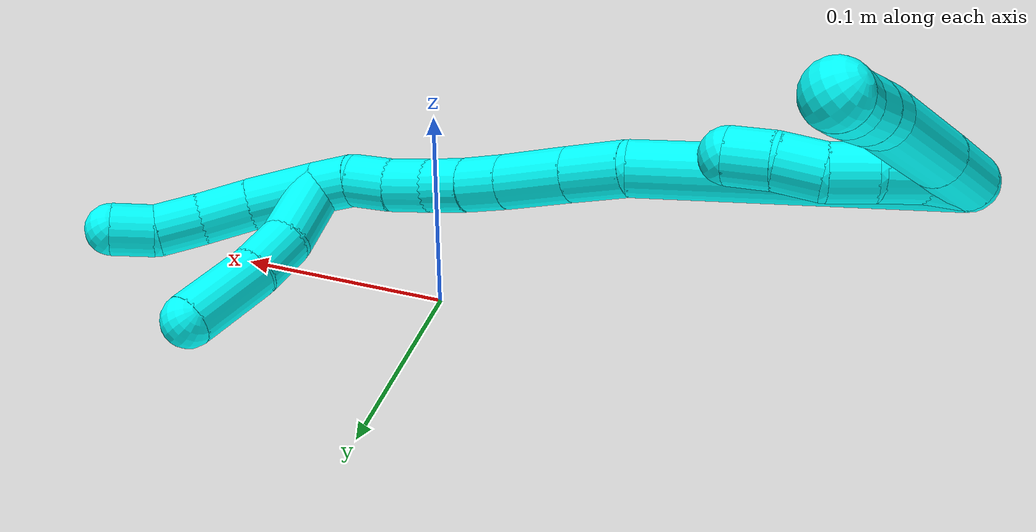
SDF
<sdf version="1.7">
 <world name="default">
  <model name="3">
   <static>0</static>
   <link name="3">
    <collision name="collision-cylinder-e_1_2_8">
     <pose>0.009421 0.012812 0.003813 -1.28152 0.613941 -0.464255</pose>
     <geometry><cylinder><radius>0.0125</radius><length>0.032707</length></cylinder></geometry>
     <surface>
      <friction><ode><mu>1.16</mu><mu2>1.16</mu2><slip1>0</slip1><slip2>0</slip2></ode></friction>
      <contact><ode><kp>1e+06</kp><kd>1</kd><max_vel>0</max_vel><min_depth>0.001</min_depth></ode></contact>
     </surface>
    </collision>
    <visual name="visual-cylinder-e_1_2_8">
     <pose>0.009421 0.012812 0.003813 -1.28152 0.613941 -0.464255</pose>
     <geometry><cylinder><radius>0.0125</radius><length>0.032707</length></cylinder></geometry>
     <material><ambient>0.003922 1 0.996078 1</ambient></material>
    </visual>
    <collision name="collision-cylinder-e_2_8_9">
     <pose>0.033239 0.046336 0.01365 -1.28779 0.588513 -0.44734</pose>
     <geometry><cylinder><radius>0.0125</radius><length>0.051866</length></cylinder></geometry>
     <surface>
      <friction><ode><mu>1.16</mu><mu2>1.16</mu2><slip1>0</slip1><slip2>0</slip2></ode></friction>
      <contact><ode><kp>1e+06</kp><kd>1</kd><max_vel>0</max_vel><min_depth>0.001</min_depth></ode></contact>
     </surface>
    </collision>
    <visual name="visual-cylinder-e_2_8_9">
     <pose>0.033239 0.046336 0.01365 -1.28779 0.588513 -0.44734</pose>
     <geometry><cylinder><radius>0.0125</radius><length>0.051866</length></cylinder></geometry>
     <material><ambient>0.003922 1 0.996078 1</ambient></material>
    </visual>
    <collision name="collision-cylinder-e_3_9_10">
     <pose>0.050858 0.076965 0.023107 -1.23744 0.297965 -0.212921</pose>
     <geometry><cylinder><radius>0.0125</radius><length>0.021957</length></cylinder></geometry>
     <surface>
      <friction><ode><mu>1.16</mu><mu2>1.16</mu2><slip1>0</slip1><slip2>0</slip2></ode></friction>
      <contact><ode><kp>1e+06</kp><kd>1</kd><max_vel>0</max_vel><min_depth>0.001</min_depth></ode></contact>
     </surface>
    </collision>
    <visual name="visual-cylinder-e_3_9_10">
     <pose>0.050858 0.076965 0.023107 -1.23744 0.297965 -0.212921</pose>
     <geometry><cylinder><radius>0.0125</radius><length>0.021957</length></cylinder></geometry>
     <material><ambient>0.003922 1 0.996078 1</ambient></material>
    </visual>
    <collision name="collision-cylinder-e_4_10_11">
     <pose>0.05768 0.097155 0.029922 -1.25285 0.321253 -0.233432</pose>
     <geometry><cylinder><radius>0.0125</radius><length>0.022797</length></cylinder></geometry>
     <surface>
      <friction><ode><mu>1.16</mu><mu2>1.16</mu2><slip1>0</slip1><slip2>0</slip2></ode></friction>
      <contact><ode><kp>1e+06</kp><kd>1</kd><max_vel>0</max_vel><min_depth>0.001</min_depth></ode></contact>
     </surface>
    </collision>
    <visual name="visual-cylinder-e_4_10_11">
     <pose>0.05768 0.097155 0.029922 -1.25285 0.321253 -0.233432</pose>
     <geometry><cylinder><radius>0.0125</radius><length>0.022797</length></cylinder></geometry>
     <material><ambient>0.003922 1 0.996078 1</ambient></material>
    </visual>
    <collision name="collision-cylinder-e_5_11_6">
     <pose>0.063858 0.116573 0.037373 -1.15206 0.252167 -0.164287</pose>
     <geometry><cylinder><radius>0.0125</radius><length>0.020673</length></cylinder></geometry>
     <surface>
      <friction><ode><mu>1.16</mu><mu2>1.16</mu2><slip1>0</slip1><slip2>0</slip2></ode></friction>
      <contact><ode><kp>1e+06</kp><kd>1</kd><max_vel>0</max_vel><min_depth>0.001</min_depth></ode></contact>
     </surface>
    </collision>
    <visual name="visual-cylinder-e_5_11_6">
     <pose>0.063858 0.116573 0.037373 -1.15206 0.252167 -0.164287</pose>
     <geometry><cylinder><radius>0.0125</radius><length>0.020673</length></cylinder></geometry>
     <material><ambient>0.003922 1 0.996078 1</ambient></material>
    </visual>
    <collision name="collision-cylinder-e_1_2_12">
     <pose>0.007044 0.006094 -0.00364 -2.10925 0.781537 -1.25583</pose>
     <geometry><cylinder><radius>0.0125</radius><length>0.02</length></cylinder></geometry>
     <surface>
      <friction><ode><mu>1.16</mu><mu2>1.16</mu2><slip1>0</slip1><slip2>0</slip2></ode></friction>
      <contact><ode><kp>1e+06</kp><kd>1</kd><max_vel>0</max_vel><min_depth>0.001</min_depth></ode></contact>
     </surface>
    </collision>
    <visual name="visual-cylinder-e_1_2_12">
     <pose>0.007044 0.006094 -0.00364 -2.10925 0.781537 -1.25583</pose>
     <geometry><cylinder><radius>0.0125</radius><length>0.02</length></cylinder></geometry>
     <material><ambient>0.003922 1 0.996078 1</ambient></material>
    </visual>
    <collision name="collision-cylinder-e_2_12_13">
     <pose>0.019977 0.018491 -0.012338 -2.247 0.629753 -1.19293</pose>
     <geometry><cylinder><radius>0.0125</radius><length>0.02</length></cylinder></geometry>
     <surface>
      <friction><ode><mu>1.16</mu><mu2>1.16</mu2><slip1>0</slip1><slip2>0</slip2></ode></friction>
      <contact><ode><kp>1e+06</kp><kd>1</kd><max_vel>0</max_vel><min_depth>0.001</min_depth></ode></contact>
     </surface>
    </collision>
    <visual name="visual-cylinder-e_2_12_13">
     <pose>0.019977 0.018491 -0.012338 -2.247 0.629753 -1.19293</pose>
     <geometry><cylinder><radius>0.0125</radius><length>0.02</length></cylinder></geometry>
     <material><ambient>0.003922 1 0.996078 1</ambient></material>
    </visual>
    <collision name="collision-cylinder-e_3_13_14">
     <pose>0.031832 0.029383 -0.02398 -2.53302 0.63926 -1.62331</pose>
     <geometry><cylinder><radius>0.0125</radius><length>0.02</length></cylinder></geometry>
     <surface>
      <friction><ode><mu>1.16</mu><mu2>1.16</mu2><slip1>0</slip1><slip2>0</slip2></ode></friction>
      <contact><ode><kp>1e+06</kp><kd>1</kd><max_vel>0</max_vel><min_depth>0.001</min_depth></ode></contact>
     </surface>
    </collision>
    <visual name="visual-cylinder-e_3_13_14">
     <pose>0.031832 0.029383 -0.02398 -2.53302 0.63926 -1.62331</pose>
     <geometry><cylinder><radius>0.0125</radius><length>0.02</length></cylinder></geometry>
     <material><ambient>0.003922 1 0.996078 1</ambient></material>
    </visual>
    <collision name="collision-cylinder-e_4_14_15">
     <pose>0.045324 0.036313 -0.036719 -2.77791 0.852012 -2.37164</pose>
     <geometry><cylinder><radius>0.0125</radius><length>0.02</length></cylinder></geometry>
     <surface>
      <friction><ode><mu>1.16</mu><mu2>1.16</mu2><slip1>0</slip1><slip2>0</slip2></ode></friction>
      <contact><ode><kp>1e+06</kp><kd>1</kd><max_vel>0</max_vel><min_depth>0.001</min_depth></ode></contact>
     </surface>
    </collision>
    <visual name="visual-cylinder-e_4_14_15">
     <pose>0.045324 0.036313 -0.036719 -2.77791 0.852012 -2.37164</pose>
     <geometry><cylinder><radius>0.0125</radius><length>0.02</length></cylinder></geometry>
     <material><ambient>0.003922 1 0.996078 1</ambient></material>
    </visual>
    <collision name="collision-cylinder-e_5_15_5">
     <pose>0.059314 0.040041 -0.050376 -2.95894 0.702844 -2.65205</pose>
     <geometry><cylinder><radius>0.0125</radius><length>0.02</length></cylinder></geometry>
     <surface>
      <friction><ode><mu>1.16</mu><mu2>1.16</mu2><slip1>0</slip1><slip2>0</slip2></ode></friction>
      <contact><ode><kp>1e+06</kp><kd>1</kd><max_vel>0</max_vel><min_depth>0.001</min_depth></ode></contact>
     </surface>
    </collision>
    <visual name="visual-cylinder-e_5_15_5">
     <pose>0.059314 0.040041 -0.050376 -2.95894 0.702844 -2.65205</pose>
     <geometry><cylinder><radius>0.0125</radius><length>0.02</length></cylinder></geometry>
     <material><ambient>0.003922 1 0.996078 1</ambient></material>
    </visual>
    <collision name="collision-cylinder-e_1_2_16">
     <pose>0.042778 0.02288 -0.049459 -2.70831 0.665524 -2.00749</pose>
     <geometry><cylinder><radius>0.0125</radius><length>0.138559</length></cylinder></geometry>
     <surface>
      <friction><ode><mu>1.16</mu><mu2>1.16</mu2><slip1>0</slip1><slip2>0</slip2></ode></friction>
      <contact><ode><kp>1e+06</kp><kd>1</kd><max_vel>0</max_vel><min_depth>0.001</min_depth></ode></contact>
     </surface>
    </collision>
    <visual name="visual-cylinder-e_1_2_16">
     <pose>0.042778 0.02288 -0.049459 -2.70831 0.665524 -2.00749</pose>
     <geometry><cylinder><radius>0.0125</radius><length>0.138559</length></cylinder></geometry>
     <material><ambient>0.003922 1 0.996078 1</ambient></material>
    </visual>
    <collision name="collision-cylinder-e_2_16_17">
     <pose>0.091915 0.047252 -0.111276 -3.02141 0.472295 -2.65158</pose>
     <geometry><cylinder><radius>0.0125</radius><length>0.027955</length></cylinder></geometry>
     <surface>
      <friction><ode><mu>1.16</mu><mu2>1.16</mu2><slip1>0</slip1><slip2>0</slip2></ode></friction>
      <contact><ode><kp>1e+06</kp><kd>1</kd><max_vel>0</max_vel><min_depth>0.001</min_depth></ode></contact>
     </surface>
    </collision>
    <visual name="visual-cylinder-e_2_16_17">
     <pose>0.091915 0.047252 -0.111276 -3.02141 0.472295 -2.65158</pose>
     <geometry><cylinder><radius>0.0125</radius><length>0.027955</length></cylinder></geometry>
     <material><ambient>0.003922 1 0.996078 1</ambient></material>
    </visual>
    <collision name="collision-cylinder-e_3_17_18">
     <pose>0.105701 0.050759 -0.138268 -3.00473 0.465876 -2.57913</pose>
     <geometry><cylinder><radius>0.0125</radius><length>0.033069</length></cylinder></geometry>
     <surface>
      <friction><ode><mu>1.16</mu><mu2>1.16</mu2><slip1>0</slip1><slip2>0</slip2></ode></friction>
      <contact><ode><kp>1e+06</kp><kd>1</kd><max_vel>0</max_vel><min_depth>0.001</min_depth></ode></contact>
     </surface>
    </collision>
    <visual name="visual-cylinder-e_3_17_18">
     <pose>0.105701 0.050759 -0.138268 -3.00473 0.465876 -2.57913</pose>
     <geometry><cylinder><radius>0.0125</radius><length>0.033069</length></cylinder></geometry>
     <material><ambient>0.003922 1 0.996078 1</ambient></material>
    </visual>
    <collision name="collision-cylinder-e_4_18_19">
     <pose>0.117989 0.054097 -0.161717 -2.99265 0.499246 -2.5722</pose>
     <geometry><cylinder><radius>0.0125</radius><length>0.020305</length></cylinder></geometry>
     <surface>
      <friction><ode><mu>1.16</mu><mu2>1.16</mu2><slip1>0</slip1><slip2>0</slip2></ode></friction>
      <contact><ode><kp>1e+06</kp><kd>1</kd><max_vel>0</max_vel><min_depth>0.001</min_depth></ode></contact>
     </surface>
    </collision>
    <visual name="visual-cylinder-e_4_18_19">
     <pose>0.117989 0.054097 -0.161717 -2.99265 0.499246 -2.5722</pose>
     <geometry><cylinder><radius>0.0125</radius><length>0.020305</length></cylinder></geometry>
     <material><ambient>0.003922 1 0.996078 1</ambient></material>
    </visual>
    <collision name="collision-cylinder-e_5_19_20">
     <pose>0.128054 0.056375 -0.179049 -3.02994 0.545658 -2.74731</pose>
     <geometry><cylinder><radius>0.0125</radius><length>0.020053</length></cylinder></geometry>
     <surface>
      <friction><ode><mu>1.16</mu><mu2>1.16</mu2><slip1>0</slip1><slip2>0</slip2></ode></friction>
      <contact><ode><kp>1e+06</kp><kd>1</kd><max_vel>0</max_vel><min_depth>0.001</min_depth></ode></contact>
     </surface>
    </collision>
    <visual name="visual-cylinder-e_5_19_20">
     <pose>0.128054 0.056375 -0.179049 -3.02994 0.545658 -2.74731</pose>
     <geometry><cylinder><radius>0.0125</radius><length>0.020053</length></cylinder></geometry>
     <material><ambient>0.003922 1 0.996078 1</ambient></material>
    </visual>
    <collision name="collision-cylinder-e_6_20_21">
     <pose>0.139016 0.059666 -0.195407 -2.85204 0.613352 -2.27865</pose>
     <geometry><cylinder><radius>0.0125</radius><length>0.020011</length></cylinder></geometry>
     <surface>
      <friction><ode><mu>1.16</mu><mu2>1.16</mu2><slip1>0</slip1><slip2>0</slip2></ode></friction>
      <contact><ode><kp>1e+06</kp><kd>1</kd><max_vel>0</max_vel><min_depth>0.001</min_depth></ode></contact>
     </surface>
    </collision>
    <visual name="visual-cylinder-e_6_20_21">
     <pose>0.139016 0.059666 -0.195407 -2.85204 0.613352 -2.27865</pose>
     <geometry><cylinder><radius>0.0125</radius><length>0.020011</length></cylinder></geometry>
     <material><ambient>0.003922 1 0.996078 1</ambient></material>
    </visual>
    <collision name="collision-cylinder-e_7_21_22">
     <pose>0.151402 0.064185 -0.210424 -2.84627 0.723522 -2.39256</pose>
     <geometry><cylinder><radius>0.0125</radius><length>0.020017</length></cylinder></geometry>
     <surface>
      <friction><ode><mu>1.16</mu><mu2>1.16</mu2><slip1>0</slip1><slip2>0</slip2></ode></friction>
      <contact><ode><kp>1e+06</kp><kd>1</kd><max_vel>0</max_vel><min_depth>0.001</min_depth></ode></contact>
     </surface>
    </collision>
    <visual name="visual-cylinder-e_7_21_22">
     <pose>0.151402 0.064185 -0.210424 -2.84627 0.723522 -2.39256</pose>
     <geometry><cylinder><radius>0.0125</radius><length>0.020017</length></cylinder></geometry>
     <material><ambient>0.003922 1 0.996078 1</ambient></material>
    </visual>
    <collision name="collision-cylinder-e_8_22_1">
     <pose>0.162134 0.069152 -0.226301 -2.83196 0.422425 -1.8832</pose>
     <geometry><cylinder><radius>0.0125</radius><length>0.020031</length></cylinder></geometry>
     <surface>
      <friction><ode><mu>1.16</mu><mu2>1.16</mu2><slip1>0</slip1><slip2>0</slip2></ode></friction>
      <contact><ode><kp>1e+06</kp><kd>1</kd><max_vel>0</max_vel><min_depth>0.001</min_depth></ode></contact>
     </surface>
    </collision>
    <visual name="visual-cylinder-e_8_22_1">
     <pose>0.162134 0.069152 -0.226301 -2.83196 0.422425 -1.8832</pose>
     <geometry><cylinder><radius>0.0125</radius><length>0.020031</length></cylinder></geometry>
     <material><ambient>0.003922 1 0.996078 1</ambient></material>
    </visual>
    <collision name="collision-cylinder-e_1_1_23">
     <pose>0.159336 0.088796 -0.23625 -1.64465 -0.387696 0.416618</pose>
     <geometry><cylinder><radius>0.0125</radius><length>0.036524</length></cylinder></geometry>
     <surface>
      <friction><ode><mu>1.16</mu><mu2>1.16</mu2><slip1>0</slip1><slip2>0</slip2></ode></friction>
      <contact><ode><kp>1e+06</kp><kd>1</kd><max_vel>0</max_vel><min_depth>0.001</min_depth></ode></contact>
     </surface>
    </collision>
    <visual name="visual-cylinder-e_1_1_23">
     <pose>0.159336 0.088796 -0.23625 -1.64465 -0.387696 0.416618</pose>
     <geometry><cylinder><radius>0.0125</radius><length>0.036524</length></cylinder></geometry>
     <material><ambient>0.003922 1 0.996078 1</ambient></material>
    </visual>
    <collision name="collision-cylinder-e_2_23_24">
     <pose>0.150301 0.117166 -0.239088 -1.70817 -0.181306 0.207914</pose>
     <geometry><cylinder><radius>0.0125</radius><length>0.023624</length></cylinder></geometry>
     <surface>
      <friction><ode><mu>1.16</mu><mu2>1.16</mu2><slip1>0</slip1><slip2>0</slip2></ode></friction>
      <contact><ode><kp>1e+06</kp><kd>1</kd><max_vel>0</max_vel><min_depth>0.001</min_depth></ode></contact>
     </surface>
    </collision>
    <visual name="visual-cylinder-e_2_23_24">
     <pose>0.150301 0.117166 -0.239088 -1.70817 -0.181306 0.207914</pose>
     <geometry><cylinder><radius>0.0125</radius><length>0.023624</length></cylinder></geometry>
     <material><ambient>0.003922 1 0.996078 1</ambient></material>
    </visual>
    <collision name="collision-cylinder-e_3_24_4">
     <pose>0.146949 0.14822 -0.244356 -1.75676 -0.061391 0.074007</pose>
     <geometry><cylinder><radius>0.0125</radius><length>0.039851</length></cylinder></geometry>
     <surface>
      <friction><ode><mu>1.16</mu><mu2>1.16</mu2><slip1>0</slip1><slip2>0</slip2></ode></friction>
      <contact><ode><kp>1e+06</kp><kd>1</kd><max_vel>0</max_vel><min_depth>0.001</min_depth></ode></contact>
     </surface>
    </collision>
    <visual name="visual-cylinder-e_3_24_4">
     <pose>0.146949 0.14822 -0.244356 -1.75676 -0.061391 0.074007</pose>
     <geometry><cylinder><radius>0.0125</radius><length>0.039851</length></cylinder></geometry>
     <material><ambient>0.003922 1 0.996078 1</ambient></material>
    </visual>
    <collision name="collision-cylinder-e_1_1_25">
     <pose>0.172459 0.082182 -0.246199 -2.40049 0.388889 -0.938318</pose>
     <geometry><cylinder><radius>0.0125</radius><length>0.032806</length></cylinder></geometry>
     <surface>
      <friction><ode><mu>1.16</mu><mu2>1.16</mu2><slip1>0</slip1><slip2>0</slip2></ode></friction>
      <contact><ode><kp>1e+06</kp><kd>1</kd><max_vel>0</max_vel><min_depth>0.001</min_depth></ode></contact>
     </surface>
    </collision>
    <visual name="visual-cylinder-e_1_1_25">
     <pose>0.172459 0.082182 -0.246199 -2.40049 0.388889 -0.938318</pose>
     <geometry><cylinder><radius>0.0125</radius><length>0.032806</length></cylinder></geometry>
     <material><ambient>0.003922 1 0.996078 1</ambient></material>
    </visual>
    <collision name="collision-cylinder-e_2_25_26">
     <pose>0.182809 0.100613 -0.265519 -2.35239 0.343981 -0.790349</pose>
     <geometry><cylinder><radius>0.0125</radius><length>0.024495</length></cylinder></geometry>
     <surface>
      <friction><ode><mu>1.16</mu><mu2>1.16</mu2><slip1>0</slip1><slip2>0</slip2></ode></friction>
      <contact><ode><kp>1e+06</kp><kd>1</kd><max_vel>0</max_vel><min_depth>0.001</min_depth></ode></contact>
     </surface>
    </collision>
    <visual name="visual-cylinder-e_2_25_26">
     <pose>0.182809 0.100613 -0.265519 -2.35239 0.343981 -0.790349</pose>
     <geometry><cylinder><radius>0.0125</radius><length>0.024495</length></cylinder></geometry>
     <material><ambient>0.003922 1 0.996078 1</ambient></material>
    </visual>
    <collision name="collision-cylinder-e_3_26_27">
     <pose>0.190693 0.117544 -0.279243 -2.14052 0.346798 -0.6198</pose>
     <geometry><cylinder><radius>0.0125</radius><length>0.022089</length></cylinder></geometry>
     <surface>
      <friction><ode><mu>1.16</mu><mu2>1.16</mu2><slip1>0</slip1><slip2>0</slip2></ode></friction>
      <contact><ode><kp>1e+06</kp><kd>1</kd><max_vel>0</max_vel><min_depth>0.001</min_depth></ode></contact>
     </surface>
    </collision>
    <visual name="visual-cylinder-e_3_26_27">
     <pose>0.190693 0.117544 -0.279243 -2.14052 0.346798 -0.6198</pose>
     <geometry><cylinder><radius>0.0125</radius><length>0.022089</length></cylinder></geometry>
     <material><ambient>0.003922 1 0.996078 1</ambient></material>
    </visual>
    <collision name="collision-cylinder-e_4_27_3">
     <pose>0.200744 0.132975 -0.289521 -2.18103 0.657372 -1.15929</pose>
     <geometry><cylinder><radius>0.0125</radius><length>0.02061</length></cylinder></geometry>
     <surface>
      <friction><ode><mu>1.16</mu><mu2>1.16</mu2><slip1>0</slip1><slip2>0</slip2></ode></friction>
      <contact><ode><kp>1e+06</kp><kd>1</kd><max_vel>0</max_vel><min_depth>0.001</min_depth></ode></contact>
     </surface>
    </collision>
    <visual name="visual-cylinder-e_4_27_3">
     <pose>0.200744 0.132975 -0.289521 -2.18103 0.657372 -1.15929</pose>
     <geometry><cylinder><radius>0.0125</radius><length>0.02061</length></cylinder></geometry>
     <material><ambient>0.003922 1 0.996078 1</ambient></material>
    </visual>
    <collision name="collision-sphere-3">
     <pose>0.20704 0.13966 -0.294195 0 -0 0</pose>
     <geometry><sphere><radius>0.0125</radius></sphere></geometry>
     <surface>
      <friction><ode><mu>1.16</mu><mu2>1.16</mu2><slip1>0</slip1><slip2>0</slip2></ode></friction>
      <contact><ode><kp>1e+06</kp><kd>1</kd><max_vel>0</max_vel><min_depth>0.001</min_depth></ode></contact>
     </surface>
    </collision>
    <visual name="visual-sphere-3">
     <pose>0.20704 0.13966 -0.294195 0 -0 0</pose>
     <geometry><sphere><radius>0.0125</radius></sphere></geometry>
     <material><ambient>0.003922 1 0.996078 1</ambient></material>
    </visual>
    <collision name="collision-sphere-27">
     <pose>0.194447 0.12629 -0.284846 0 -0 0</pose>
     <geometry><sphere><radius>0.0125</radius></sphere></geometry>
     <surface>
      <friction><ode><mu>1.16</mu><mu2>1.16</mu2><slip1>0</slip1><slip2>0</slip2></ode></friction>
      <contact><ode><kp>1e+06</kp><kd>1</kd><max_vel>0</max_vel><min_depth>0.001</min_depth></ode></contact>
     </surface>
    </collision>
    <visual name="visual-sphere-27">
     <pose>0.194447 0.12629 -0.284846 0 -0 0</pose>
     <geometry><sphere><radius>0.0125</radius></sphere></geometry>
     <material><ambient>0.003922 1 0.996078 1</ambient></material>
    </visual>
    <collision name="collision-sphere-26">
     <pose>0.186939 0.108797 -0.273641 0 -0 0</pose>
     <geometry><sphere><radius>0.0125</radius></sphere></geometry>
     <surface>
      <friction><ode><mu>1.16</mu><mu2>1.16</mu2><slip1>0</slip1><slip2>0</slip2></ode></friction>
      <contact><ode><kp>1e+06</kp><kd>1</kd><max_vel>0</max_vel><min_depth>0.001</min_depth></ode></contact>
     </surface>
    </collision>
    <visual name="visual-sphere-26">
     <pose>0.186939 0.108797 -0.273641 0 -0 0</pose>
     <geometry><sphere><radius>0.0125</radius></sphere></geometry>
     <material><ambient>0.003922 1 0.996078 1</ambient></material>
    </visual>
    <collision name="collision-sphere-25">
     <pose>0.178678 0.092429 -0.257397 0 -0 0</pose>
     <geometry><sphere><radius>0.0125</radius></sphere></geometry>
     <surface>
      <friction><ode><mu>1.16</mu><mu2>1.16</mu2><slip1>0</slip1><slip2>0</slip2></ode></friction>
      <contact><ode><kp>1e+06</kp><kd>1</kd><max_vel>0</max_vel><min_depth>0.001</min_depth></ode></contact>
     </surface>
    </collision>
    <visual name="visual-sphere-25">
     <pose>0.178678 0.092429 -0.257397 0 -0 0</pose>
     <geometry><sphere><radius>0.0125</radius></sphere></geometry>
     <material><ambient>0.003922 1 0.996078 1</ambient></material>
    </visual>
    <collision name="collision-sphere-4">
     <pose>0.145727 0.167766 -0.248033 0 -0 0</pose>
     <geometry><sphere><radius>0.0125</radius></sphere></geometry>
     <surface>
      <friction><ode><mu>1.16</mu><mu2>1.16</mu2><slip1>0</slip1><slip2>0</slip2></ode></friction>
      <contact><ode><kp>1e+06</kp><kd>1</kd><max_vel>0</max_vel><min_depth>0.001</min_depth></ode></contact>
     </surface>
    </collision>
    <visual name="visual-sphere-4">
     <pose>0.145727 0.167766 -0.248033 0 -0 0</pose>
     <geometry><sphere><radius>0.0125</radius></sphere></geometry>
     <material><ambient>0.003922 1 0.996078 1</ambient></material>
    </visual>
    <collision name="collision-sphere-24">
     <pose>0.148172 0.128675 -0.240679 0 -0 0</pose>
     <geometry><sphere><radius>0.0125</radius></sphere></geometry>
     <surface>
      <friction><ode><mu>1.16</mu><mu2>1.16</mu2><slip1>0</slip1><slip2>0</slip2></ode></friction>
      <contact><ode><kp>1e+06</kp><kd>1</kd><max_vel>0</max_vel><min_depth>0.001</min_depth></ode></contact>
     </surface>
    </collision>
    <visual name="visual-sphere-24">
     <pose>0.148172 0.128675 -0.240679 0 -0 0</pose>
     <geometry><sphere><radius>0.0125</radius></sphere></geometry>
     <material><ambient>0.003922 1 0.996078 1</ambient></material>
    </visual>
    <collision name="collision-sphere-23">
     <pose>0.152431 0.105657 -0.237497 0 -0 0</pose>
     <geometry><sphere><radius>0.0125</radius></sphere></geometry>
     <surface>
      <friction><ode><mu>1.16</mu><mu2>1.16</mu2><slip1>0</slip1><slip2>0</slip2></ode></friction>
      <contact><ode><kp>1e+06</kp><kd>1</kd><max_vel>0</max_vel><min_depth>0.001</min_depth></ode></contact>
     </surface>
    </collision>
    <visual name="visual-sphere-23">
     <pose>0.152431 0.105657 -0.237497 0 -0 0</pose>
     <geometry><sphere><radius>0.0125</radius></sphere></geometry>
     <material><ambient>0.003922 1 0.996078 1</ambient></material>
    </visual>
    <collision name="collision-sphere-1">
     <pose>0.16624 0.071935 -0.235002 0 -0 0</pose>
     <geometry><sphere><radius>0.0125</radius></sphere></geometry>
     <surface>
      <friction><ode><mu>1.16</mu><mu2>1.16</mu2><slip1>0</slip1><slip2>0</slip2></ode></friction>
      <contact><ode><kp>1e+06</kp><kd>1</kd><max_vel>0</max_vel><min_depth>0.001</min_depth></ode></contact>
     </surface>
    </collision>
    <visual name="visual-sphere-1">
     <pose>0.16624 0.071935 -0.235002 0 -0 0</pose>
     <geometry><sphere><radius>0.0125</radius></sphere></geometry>
     <material><ambient>0.003922 1 0.996078 1</ambient></material>
    </visual>
    <collision name="collision-sphere-22">
     <pose>0.158028 0.066368 -0.217601 0 -0 0</pose>
     <geometry><sphere><radius>0.0125</radius></sphere></geometry>
     <surface>
      <friction><ode><mu>1.16</mu><mu2>1.16</mu2><slip1>0</slip1><slip2>0</slip2></ode></friction>
      <contact><ode><kp>1e+06</kp><kd>1</kd><max_vel>0</max_vel><min_depth>0.001</min_depth></ode></contact>
     </surface>
    </collision>
    <visual name="visual-sphere-22">
     <pose>0.158028 0.066368 -0.217601 0 -0 0</pose>
     <geometry><sphere><radius>0.0125</radius></sphere></geometry>
     <material><ambient>0.003922 1 0.996078 1</ambient></material>
    </visual>
    <collision name="collision-sphere-21">
     <pose>0.144776 0.062002 -0.203248 0 -0 0</pose>
     <geometry><sphere><radius>0.0125</radius></sphere></geometry>
     <surface>
      <friction><ode><mu>1.16</mu><mu2>1.16</mu2><slip1>0</slip1><slip2>0</slip2></ode></friction>
      <contact><ode><kp>1e+06</kp><kd>1</kd><max_vel>0</max_vel><min_depth>0.001</min_depth></ode></contact>
     </surface>
    </collision>
    <visual name="visual-sphere-21">
     <pose>0.144776 0.062002 -0.203248 0 -0 0</pose>
     <geometry><sphere><radius>0.0125</radius></sphere></geometry>
     <material><ambient>0.003922 1 0.996078 1</ambient></material>
    </visual>
    <collision name="collision-sphere-6">
     <pose>0.066437 0.125718 0.041443 0 -0 0</pose>
     <geometry><sphere><radius>0.0125</radius></sphere></geometry>
     <surface>
      <friction><ode><mu>1.16</mu><mu2>1.16</mu2><slip1>0</slip1><slip2>0</slip2></ode></friction>
      <contact><ode><kp>1e+06</kp><kd>1</kd><max_vel>0</max_vel><min_depth>0.001</min_depth></ode></contact>
     </surface>
    </collision>
    <visual name="visual-sphere-6">
     <pose>0.066437 0.125718 0.041443 0 -0 0</pose>
     <geometry><sphere><radius>0.0125</radius></sphere></geometry>
     <material><ambient>0.003922 1 0.996078 1</ambient></material>
    </visual>
    <collision name="collision-sphere-11">
     <pose>0.061279 0.107429 0.033303 0 -0 0</pose>
     <geometry><sphere><radius>0.0125</radius></sphere></geometry>
     <surface>
      <friction><ode><mu>1.16</mu><mu2>1.16</mu2><slip1>0</slip1><slip2>0</slip2></ode></friction>
      <contact><ode><kp>1e+06</kp><kd>1</kd><max_vel>0</max_vel><min_depth>0.001</min_depth></ode></contact>
     </surface>
    </collision>
    <visual name="visual-sphere-11">
     <pose>0.061279 0.107429 0.033303 0 -0 0</pose>
     <geometry><sphere><radius>0.0125</radius></sphere></geometry>
     <material><ambient>0.003922 1 0.996078 1</ambient></material>
    </visual>
    <collision name="collision-sphere-10">
     <pose>0.054081 0.086882 0.026541 0 -0 0</pose>
     <geometry><sphere><radius>0.0125</radius></sphere></geometry>
     <surface>
      <friction><ode><mu>1.16</mu><mu2>1.16</mu2><slip1>0</slip1><slip2>0</slip2></ode></friction>
      <contact><ode><kp>1e+06</kp><kd>1</kd><max_vel>0</max_vel><min_depth>0.001</min_depth></ode></contact>
     </surface>
    </collision>
    <visual name="visual-sphere-10">
     <pose>0.054081 0.086882 0.026541 0 -0 0</pose>
     <geometry><sphere><radius>0.0125</radius></sphere></geometry>
     <material><ambient>0.003922 1 0.996078 1</ambient></material>
    </visual>
    <collision name="collision-sphere-9">
     <pose>0.047635 0.067048 0.019673 0 -0 0</pose>
     <geometry><sphere><radius>0.0125</radius></sphere></geometry>
     <surface>
      <friction><ode><mu>1.16</mu><mu2>1.16</mu2><slip1>0</slip1><slip2>0</slip2></ode></friction>
      <contact><ode><kp>1e+06</kp><kd>1</kd><max_vel>0</max_vel><min_depth>0.001</min_depth></ode></contact>
     </surface>
    </collision>
    <visual name="visual-sphere-9">
     <pose>0.047635 0.067048 0.019673 0 -0 0</pose>
     <geometry><sphere><radius>0.0125</radius></sphere></geometry>
     <material><ambient>0.003922 1 0.996078 1</ambient></material>
    </visual>
    <collision name="collision-sphere-2">
     <geometry><sphere><radius>0.0125</radius></sphere></geometry>
     <surface>
      <friction><ode><mu>1.16</mu><mu2>1.16</mu2><slip1>0</slip1><slip2>0</slip2></ode></friction>
      <contact><ode><kp>1e+06</kp><kd>1</kd><max_vel>0</max_vel><min_depth>0.001</min_depth></ode></contact>
     </surface>
    </collision>
    <visual name="visual-sphere-2">
     <geometry><sphere><radius>0.0125</radius></sphere></geometry>
     <material><ambient>0.003922 1 0.996078 1</ambient></material>
    </visual>
    <collision name="collision-sphere-19">
     <pose>0.12285 0.05542 -0.170531 0 -0 0</pose>
     <geometry><sphere><radius>0.0125</radius></sphere></geometry>
     <surface>
      <friction><ode><mu>1.16</mu><mu2>1.16</mu2><slip1>0</slip1><slip2>0</slip2></ode></friction>
      <contact><ode><kp>1e+06</kp><kd>1</kd><max_vel>0</max_vel><min_depth>0.001</min_depth></ode></contact>
     </surface>
    </collision>
    <visual name="visual-sphere-19">
     <pose>0.12285 0.05542 -0.170531 0 -0 0</pose>
     <geometry><sphere><radius>0.0125</radius></sphere></geometry>
     <material><ambient>0.003922 1 0.996078 1</ambient></material>
    </visual>
    <collision name="collision-sphere-8">
     <pose>0.018842 0.025624 0.007626 0 -0 0</pose>
     <geometry><sphere><radius>0.0125</radius></sphere></geometry>
     <surface>
      <friction><ode><mu>1.16</mu><mu2>1.16</mu2><slip1>0</slip1><slip2>0</slip2></ode></friction>
      <contact><ode><kp>1e+06</kp><kd>1</kd><max_vel>0</max_vel><min_depth>0.001</min_depth></ode></contact>
     </surface>
    </collision>
    <visual name="visual-sphere-8">
     <pose>0.018842 0.025624 0.007626 0 -0 0</pose>
     <geometry><sphere><radius>0.0125</radius></sphere></geometry>
     <material><ambient>0.003922 1 0.996078 1</ambient></material>
    </visual>
    <collision name="collision-sphere-12">
     <pose>0.014087 0.012188 -0.00728 0 -0 0</pose>
     <geometry><sphere><radius>0.0125</radius></sphere></geometry>
     <surface>
      <friction><ode><mu>1.16</mu><mu2>1.16</mu2><slip1>0</slip1><slip2>0</slip2></ode></friction>
      <contact><ode><kp>1e+06</kp><kd>1</kd><max_vel>0</max_vel><min_depth>0.001</min_depth></ode></contact>
     </surface>
    </collision>
    <visual name="visual-sphere-12">
     <pose>0.014087 0.012188 -0.00728 0 -0 0</pose>
     <geometry><sphere><radius>0.0125</radius></sphere></geometry>
     <material><ambient>0.003922 1 0.996078 1</ambient></material>
    </visual>
    <collision name="collision-sphere-13">
     <pose>0.025866 0.024795 -0.017396 0 -0 0</pose>
     <geometry><sphere><radius>0.0125</radius></sphere></geometry>
     <surface>
      <friction><ode><mu>1.16</mu><mu2>1.16</mu2><slip1>0</slip1><slip2>0</slip2></ode></friction>
      <contact><ode><kp>1e+06</kp><kd>1</kd><max_vel>0</max_vel><min_depth>0.001</min_depth></ode></contact>
     </surface>
    </collision>
    <visual name="visual-sphere-13">
     <pose>0.025866 0.024795 -0.017396 0 -0 0</pose>
     <geometry><sphere><radius>0.0125</radius></sphere></geometry>
     <material><ambient>0.003922 1 0.996078 1</ambient></material>
    </visual>
    <collision name="collision-sphere-14">
     <pose>0.037798 0.033971 -0.030565 0 -0 0</pose>
     <geometry><sphere><radius>0.0125</radius></sphere></geometry>
     <surface>
      <friction><ode><mu>1.16</mu><mu2>1.16</mu2><slip1>0</slip1><slip2>0</slip2></ode></friction>
      <contact><ode><kp>1e+06</kp><kd>1</kd><max_vel>0</max_vel><min_depth>0.001</min_depth></ode></contact>
     </surface>
    </collision>
    <visual name="visual-sphere-14">
     <pose>0.037798 0.033971 -0.030565 0 -0 0</pose>
     <geometry><sphere><radius>0.0125</radius></sphere></geometry>
     <material><ambient>0.003922 1 0.996078 1</ambient></material>
    </visual>
    <collision name="collision-sphere-15">
     <pose>0.052851 0.038655 -0.042873 0 -0 0</pose>
     <geometry><sphere><radius>0.0125</radius></sphere></geometry>
     <surface>
      <friction><ode><mu>1.16</mu><mu2>1.16</mu2><slip1>0</slip1><slip2>0</slip2></ode></friction>
      <contact><ode><kp>1e+06</kp><kd>1</kd><max_vel>0</max_vel><min_depth>0.001</min_depth></ode></contact>
     </surface>
    </collision>
    <visual name="visual-sphere-15">
     <pose>0.052851 0.038655 -0.042873 0 -0 0</pose>
     <geometry><sphere><radius>0.0125</radius></sphere></geometry>
     <material><ambient>0.003922 1 0.996078 1</ambient></material>
    </visual>
    <collision name="collision-sphere-5">
     <pose>0.065778 0.041427 -0.057879 0 -0 0</pose>
     <geometry><sphere><radius>0.0125</radius></sphere></geometry>
     <surface>
      <friction><ode><mu>1.16</mu><mu2>1.16</mu2><slip1>0</slip1><slip2>0</slip2></ode></friction>
      <contact><ode><kp>1e+06</kp><kd>1</kd><max_vel>0</max_vel><min_depth>0.001</min_depth></ode></contact>
     </surface>
    </collision>
    <visual name="visual-sphere-5">
     <pose>0.065778 0.041427 -0.057879 0 -0 0</pose>
     <geometry><sphere><radius>0.0125</radius></sphere></geometry>
     <material><ambient>0.003922 1 0.996078 1</ambient></material>
    </visual>
    <collision name="collision-sphere-16">
     <pose>0.085556 0.045759 -0.098919 0 -0 0</pose>
     <geometry><sphere><radius>0.0125</radius></sphere></geometry>
     <surface>
      <friction><ode><mu>1.16</mu><mu2>1.16</mu2><slip1>0</slip1><slip2>0</slip2></ode></friction>
      <contact><ode><kp>1e+06</kp><kd>1</kd><max_vel>0</max_vel><min_depth>0.001</min_depth></ode></contact>
     </surface>
    </collision>
    <visual name="visual-sphere-16">
     <pose>0.085556 0.045759 -0.098919 0 -0 0</pose>
     <geometry><sphere><radius>0.0125</radius></sphere></geometry>
     <material><ambient>0.003922 1 0.996078 1</ambient></material>
    </visual>
    <collision name="collision-sphere-17">
     <pose>0.098274 0.048744 -0.123634 0 -0 0</pose>
     <geometry><sphere><radius>0.0125</radius></sphere></geometry>
     <surface>
      <friction><ode><mu>1.16</mu><mu2>1.16</mu2><slip1>0</slip1><slip2>0</slip2></ode></friction>
      <contact><ode><kp>1e+06</kp><kd>1</kd><max_vel>0</max_vel><min_depth>0.001</min_depth></ode></contact>
     </surface>
    </collision>
    <visual name="visual-sphere-17">
     <pose>0.098274 0.048744 -0.123634 0 -0 0</pose>
     <geometry><sphere><radius>0.0125</radius></sphere></geometry>
     <material><ambient>0.003922 1 0.996078 1</ambient></material>
    </visual>
    <collision name="collision-sphere-18">
     <pose>0.113129 0.052775 -0.152902 0 -0 0</pose>
     <geometry><sphere><radius>0.0125</radius></sphere></geometry>
     <surface>
      <friction><ode><mu>1.16</mu><mu2>1.16</mu2><slip1>0</slip1><slip2>0</slip2></ode></friction>
      <contact><ode><kp>1e+06</kp><kd>1</kd><max_vel>0</max_vel><min_depth>0.001</min_depth></ode></contact>
     </surface>
    </collision>
    <visual name="visual-sphere-18">
     <pose>0.113129 0.052775 -0.152902 0 -0 0</pose>
     <geometry><sphere><radius>0.0125</radius></sphere></geometry>
     <material><ambient>0.003922 1 0.996078 1</ambient></material>
    </visual>
    <collision name="collision-sphere-20">
     <pose>0.133257 0.05733 -0.187566 0 -0 0</pose>
     <geometry><sphere><radius>0.0125</radius></sphere></geometry>
     <surface>
      <friction><ode><mu>1.16</mu><mu2>1.16</mu2><slip1>0</slip1><slip2>0</slip2></ode></friction>
      <contact><ode><kp>1e+06</kp><kd>1</kd><max_vel>0</max_vel><min_depth>0.001</min_depth></ode></contact>
     </surface>
    </collision>
    <visual name="visual-sphere-20">
     <pose>0.133257 0.05733 -0.187566 0 -0 0</pose>
     <geometry><sphere><radius>0.0125</radius></sphere></geometry>
     <material><ambient>0.003922 1 0.996078 1</ambient></material>
    </visual>
    <inertial>
     <pose>0.091708 0.061895 -0.112724 0 -0 0</pose>
     <mass>0.75</mass>
     <inertia>
      <ixx>-0.000209</ixx>
      <ixy>0</ixy>
      <ixz>0</ixz>
      <iyy>1.1e-05</iyy>
      <iyz>0</iyz>
      <izz>-0.000309</izz>
     </inertia>
    </inertial>
   </link>
   <pose>-0.222506 -0.021899 0.099104 0.139841 -0.714506 -0.348451</pose>
  </model>
 </world>
</sdf>
